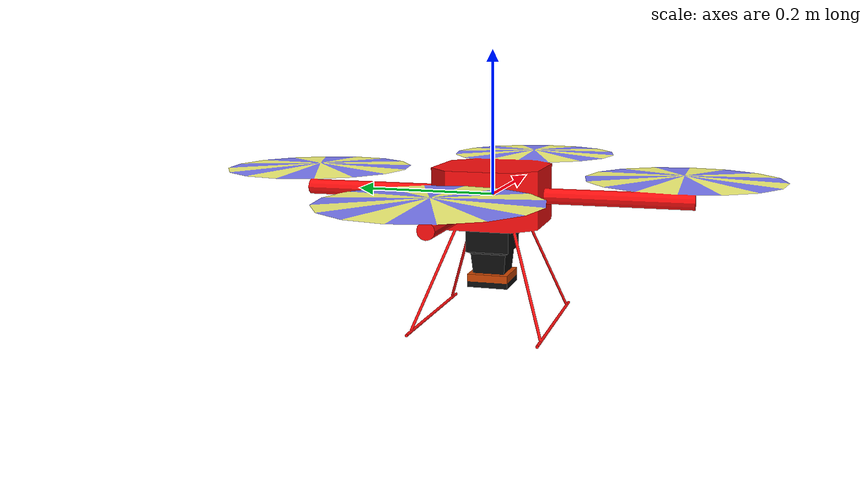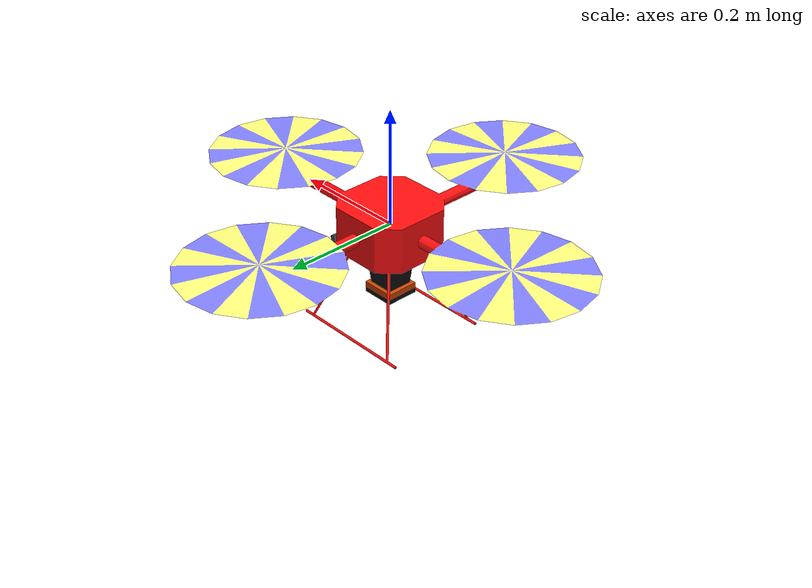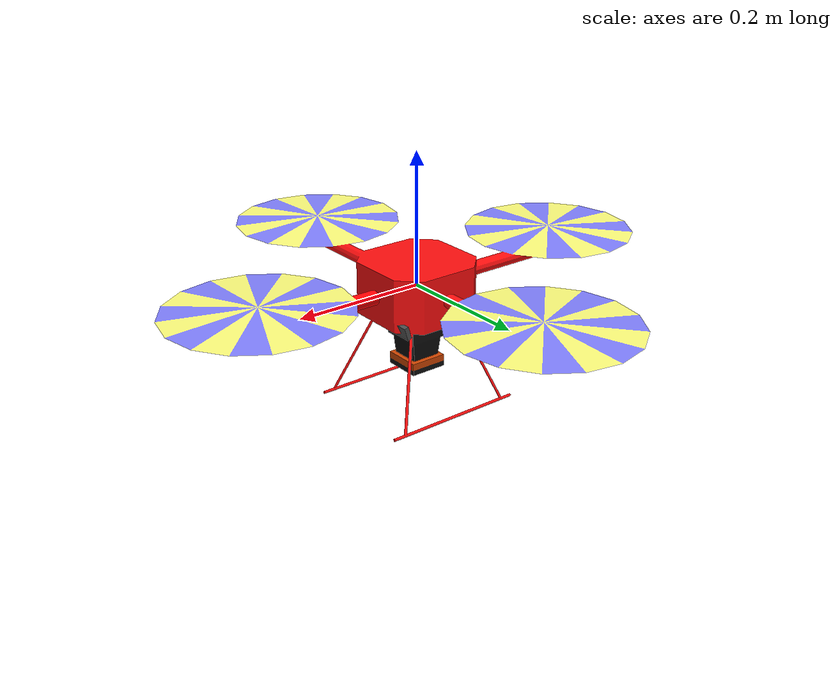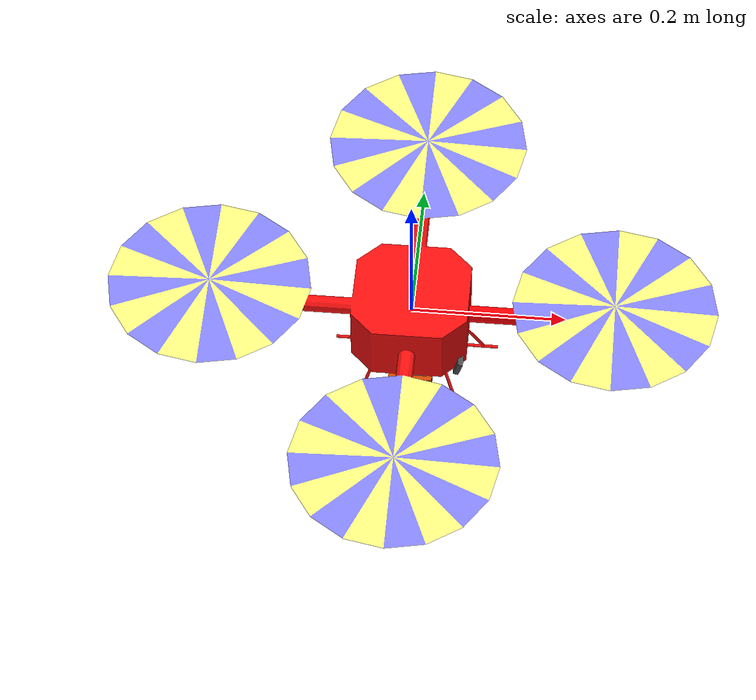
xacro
<?xml version="1.0"?>

<robot name="quadrotor" xmlns:xacro="http://www.ros.org/wiki/xacro">

    <xacro:property name="M_PI" value="3.1415926535897931" />

    <!-- Included URDF Files -->
    <xacro:include filename="$(find hector_quadrotor_description)/urdf/quadrotor_base.urdf.xacro" />

    <!-- Instantiate quadrotor_base_macro once (has no parameters atm) -->
    <xacro:quadrotor_base_macro />

    <xacro:include filename="$(find hector_sensors_description)/urdf/hokuyo_utm30lx.urdf.xacro" />

    <xacro:hokuyo_utm30lx name="laser0" parent="base_link" ros_topic="scan" update_rate="40" ray_count="1081" min_angle="-135" max_angle="135">
      <origin xyz="0.0 0.0 -0.097" rpy="${M_PI} 0 0"/>
    </xacro:hokuyo_utm30lx>

    <!-- Propiedades para simular con gazebo  -->
    <xacro:include filename="$(find robot_auto)/urdf/kinect.urdf.xacro"/>
    <xacro:sensor_kinect parent="base_link"/>

</robot>

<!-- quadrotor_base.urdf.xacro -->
<robot xmlns:xacro="http://www.ros.org/wiki/xacro">

  <xacro:property name="pi" value="3.1415926535897931" />

  <!-- Main quadrotor link -->
  <xacro:macro name="quadrotor_base_macro">
    <link name="base_link">
      <inertial>
        <mass value="1.477" />
        <origin xyz="0 0 0" />
        <inertia ixx="0.01152" ixy="0.0" ixz="0.0" iyy="0.01152" iyz="0.0" izz="0.0218" />
      </inertial>

      <visual>
        <origin xyz="0 0 0" rpy="0 0 0" />
        <geometry>
          <mesh filename="package://hector_quadrotor_description/meshes/quadrotor/quadrotor_base.dae"/>
        </geometry>
      </visual>

      <collision>
        <origin xyz="0 0 0" rpy="0 0 0" />
        <geometry>
          <mesh filename="package://hector_quadrotor_description/meshes/quadrotor/quadrotor_base.stl"/>
        </geometry>
      </collision>
    </link>

    <!-- Sonar height sensor -->

  </xacro:macro>
</robot>

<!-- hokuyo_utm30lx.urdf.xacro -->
<robot xmlns:xacro="http://ros.org/wiki/xacro">
    <xacro:property name="M_PI" value="3.1415926535897931" />

    <xacro:macro name="hokuyo_utm30lx_model" params="name parent *origin">
      <joint name="${name}_joint" type="fixed">
        <xacro:insert_block name="origin" />
        <parent link="${parent}"/>
        <child link="${name}_frame"/>
      </joint>

      <link name="${name}_frame">
        <inertial>
          <mass value="0.270" />
          <origin xyz="0 0 0" rpy="0 0 0" />
          <inertia ixx="2.632e-4" ixy="0" ixz="0" iyy="2.632e-4" iyz="0" izz="1.62e-4" />
        </inertial>
        <visual>
          <origin xyz="0 0 0" rpy="0 0 0" />
          <geometry>
          <mesh filename="package://hector_sensors_description/meshes/hokuyo_utm30lx/hokuyo_utm_30lx$(optenv TEST_SELF_FILTER).dae"/>
        </geometry>
        </visual>
        <collision>
          <origin xyz="0.00 0 0.0" rpy="0 ${0.5 * M_PI} 0" />
          <geometry>
	    <cylinder length="0.079" radius="0.0735"/>
        </geometry>
        </collision>
      </link>
    </xacro:macro>

    <xacro:macro name="hokuyo_utm30lx" params="name parent *origin ros_topic update_rate ray_count min_angle max_angle">
      <xacro:hokuyo_utm30lx_model name="${name}" parent="${parent}">
        <xacro:insert_block name="origin" />
      </xacro:hokuyo_utm30lx_model>

      <gazebo reference="${name}_frame">
        <sensor type="ray" name="${name}">
          <always_on>true</always_on>
          <update_rate>${update_rate}</update_rate>
          <pose>0 0 0 0 0 0</pose>
          <visualize>false</visualize>
          <ray>
            <scan>
              <horizontal>
                <samples>${ray_count}</samples>
                <resolution>1</resolution>
                <min_angle>${min_angle * M_PI/180}</min_angle>
                <max_angle>${max_angle * M_PI/180}</max_angle>
              </horizontal>
            </scan>
            <range>
              <min>0.2</min>
              <max>30.0</max>
              <resolution>0.01</resolution>
            </range>
            <noise>
              <type>gaussian</type>
              <mean>0.0</mean>
              <stddev>0.004</stddev>
            </noise>
          </ray>
          <plugin name="gazebo_ros_${name}_controller" filename="libgazebo_ros_laser.so">
            <gaussianNoise>0.005</gaussianNoise>
            <hokuyoMinIntensity>2000</hokuyoMinIntensity>
            <alwaysOn>true</alwaysOn>
	    <robotNamespace>$(arg robot_name)/sensor/</robotNamespace>
            <updateRate>${update_rate}</updateRate>
            <topicName>${ros_topic}</topicName>
            <frameName>${name}_frame</frameName>
          </plugin>
        </sensor>
      </gazebo>
    </xacro:macro>

    <xacro:macro name="hokuyo_utm30lx_gpu" params="name parent *origin ros_topic update_rate ray_count min_angle max_angle">
      <xacro:hokuyo_utm30lx_model name="${name}" parent="${parent}">
        <xacro:insert_block name="origin" />
      </xacro:hokuyo_utm30lx_model>

      <gazebo reference="${name}_frame">
        <sensor type="gpu_ray" name="${name}">
          <update_rate>${update_rate}</update_rate>
          <pose>0 0 0 0 0 0</pose>
          <visualize>false</visualize>
          <ray>
            <scan>
              <horizontal>
                <samples>${ray_count}</samples>
                <resolution>1</resolution>
                <min_angle>${min_angle * M_PI/180}</min_angle>
                <max_angle>${max_angle * M_PI/180}</max_angle>
              </horizontal>
            </scan>
            <range>
              <min>0.2</min>
              <max>30.0</max>
              <resolution>0.01</resolution>
            </range>
            <noise>
              <type>gaussian</type>
              <mean>0.0</mean>
              <stddev>0.004</stddev>
            </noise>
          </ray>
          <plugin name="gazebo_ros_${name}_controller" filename="libgazebo_ros_gpu_laser.so">
            <topicName>${ros_topic}</topicName>
            <frameName>${name}_frame</frameName>
          </plugin>
        </sensor>
      </gazebo>
    </xacro:macro>
</robot>

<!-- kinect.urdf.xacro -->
<robot name="sensor_kinect" xmlns:xacro="http://ros.org/wiki/xacro">

  <!-- Propiedades para simular con gazebo  -->
  <xacro:include filename="$(find autlab5)/urdf/kinect.gazebo.xacro"/>

  <xacro:property name="cam_px" value="0.1" />
  <xacro:property name="cam_py" value="0" />
  <xacro:property name="cam_pz" value="-0.03" />
  <xacro:property name="cam_or" value="0" />
  <xacro:property name="cam_op" value="0.30" />
  <xacro:property name="cam_oy" value="0" />
  <xacro:property name="kinect_cam_py" value="-0.0125"/>
  <xacro:property name="M_PI" value="3.1415926535897931" />

  <xacro:macro name="sensor_kinect" params="parent">

    <joint name="camera_rgb_joint" type="fixed">
      <origin xyz="${cam_px} ${kinect_cam_py} ${cam_pz}" rpy="${cam_or} ${cam_op} ${cam_oy}"/>
      <parent link="${parent}"/>
      <child link="camera_rgb_frame" />
    </joint>
    <link name="camera_rgb_frame"/>

    <joint name="camera_rgb_optical_joint" type="fixed">
      <origin xyz="0 0 0" rpy="${-M_PI/2} 0 ${-M_PI/2}" />
      <parent link="camera_rgb_frame" />
      <child link="camera_rgb_optical_frame" />
    </joint>
    <link name="camera_rgb_optical_frame"/>

    <joint name="camera_joint" type="fixed">
      <origin xyz="-0.031 ${-kinect_cam_py} -0.016" rpy="0 0 0"/>
      <parent link="camera_rgb_frame"/>
      <child link="camera_link"/>
    </joint>

    <link name="camera_link">
      <inertial>
        <mass value="0.064" />
        <origin xyz="0 0 0" />
        <inertia ixx="5.8083e-4" ixy="0" ixz="0" iyy="3.0833e-5" iyz="0" izz="5.9083e-4"/>
      </inertial>
      <visual>
        <origin xyz="0 0 0" rpy="0 0 0"/>
        <geometry>
          <box size="0.007 0.130 0.02" />
        </geometry>
        <material name="DarkGrey">
           <color rgba="0.3 0.3 0.3 1"/>
        </material>
      </visual>
        <collision>
          <origin xyz="0 0 0" rpy="0 0 0" />
          <geometry>
            <!--Dimensions taken from https://software.intel.com/en-us/realsense/devkit-->
            <box size="0.007 0.130 0.02" />
          </geometry>
        </collision>
    </link>

    <!-- The fixed joints & links below are usually published by static_transformers launched by the OpenNi launch
         files. However, for Gazebo simulation we need them, so we add them here.
    -->
    <joint name="camera_depth_joint" type="fixed">
      <origin xyz="0 ${2 * -kinect_cam_py} 0" rpy="0 0 0" />
      <parent link="camera_rgb_frame" />
      <child link="camera_depth_frame" />
    </joint>
    <link name="camera_depth_frame"/>

    <joint name="camera_depth_optical_joint" type="fixed">
      <origin xyz="0 0 0" rpy="${-M_PI/2} 0 ${-M_PI/2}" />
      <parent link="camera_depth_frame" />
      <child link="camera_depth_optical_frame" />
    </joint>
    <link name="camera_depth_optical_frame"/>

  </xacro:macro>
</robot>
